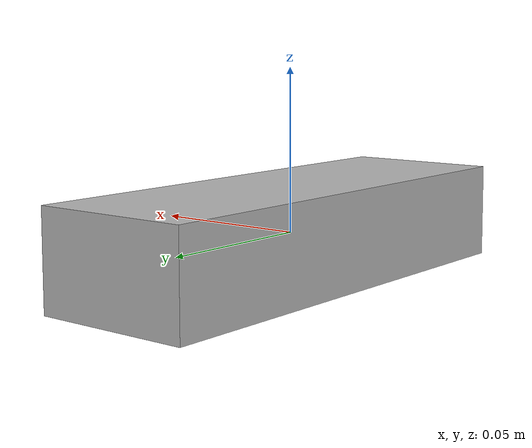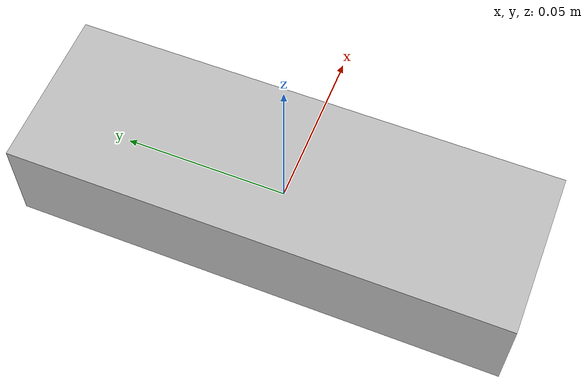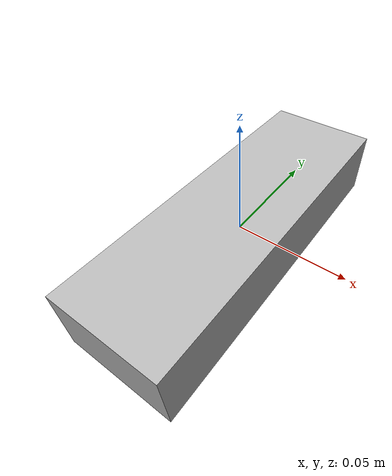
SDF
<?xml version='1.0'?>
<sdf version='1.7'>
  <model name='Caisse'>
   	<static>false</static>
    <allow_auto_disable>true</allow_auto_disable>
    <plugin filename="gz-sim-label-system" name="gz::sim::systems::Label">
        <label>10</label>
    </plugin>
    <link name='link_0'>
			<gravity>1</gravity>
      <inertial>
        <pose>0 0 0.02 0 0 0</pose>
        <mass>0.025</mass>
        <inertia>
          <ixx>2.5e-5</ixx>
          <ixy>0</ixy>
          <ixz>0</ixz>
          <iyy>2.5e-5</iyy>
          <iyz>0</iyz>
          <izz>8e-6</izz>
        </inertia>
      </inertial>
      <pose>0 0 0 0 0 0</pose>
      <visual name='visual'>
        <pose>0 0 0 0 -0 0</pose>
        <geometry>
          <mesh>
            <uri>caisse.dae</uri>
            <scale>1.0 1.0 1.0</scale>
          </mesh>
        </geometry>
        <transparency>0</transparency>
        <cast_shadows>1</cast_shadows>
      </visual>

      <collision name='collision'>
        <laser_retro>0</laser_retro>
        <max_contacts>5 </max_contacts>
        <pose>0 0 0 0 0 0</pose>
        <geometry>
          <mesh>
            <uri>caisse.dae</uri>
            <scale>1.0 1.0 1.0</scale>
          </mesh>
        </geometry>
        <surface>
          <bounce>
            <restitution_coefficient>0.1</restitution_coefficient>
            <threshold>1000000</threshold>
          </bounce>
          <friction>
            <ode>
              <mu>1.0</mu>
              <mu2>1.0</mu2>
            </ode>
          </friction>

          <contact>
            <ode>
              <soft_cfm>0</soft_cfm>
              <soft_erp>0.2</soft_erp>
              <kp>1e1</kp>
              <kd>1</kd>
              <max_vel>0</max_vel>
              <min_depth>0.001</min_depth>
            </ode>
          </contact>
        </surface>
      </collision>
    </link>
    <pose>0 0 0 0 0 0</pose>

    <allow_auto_disable>1</allow_auto_disable>
  </model>
</sdf>
